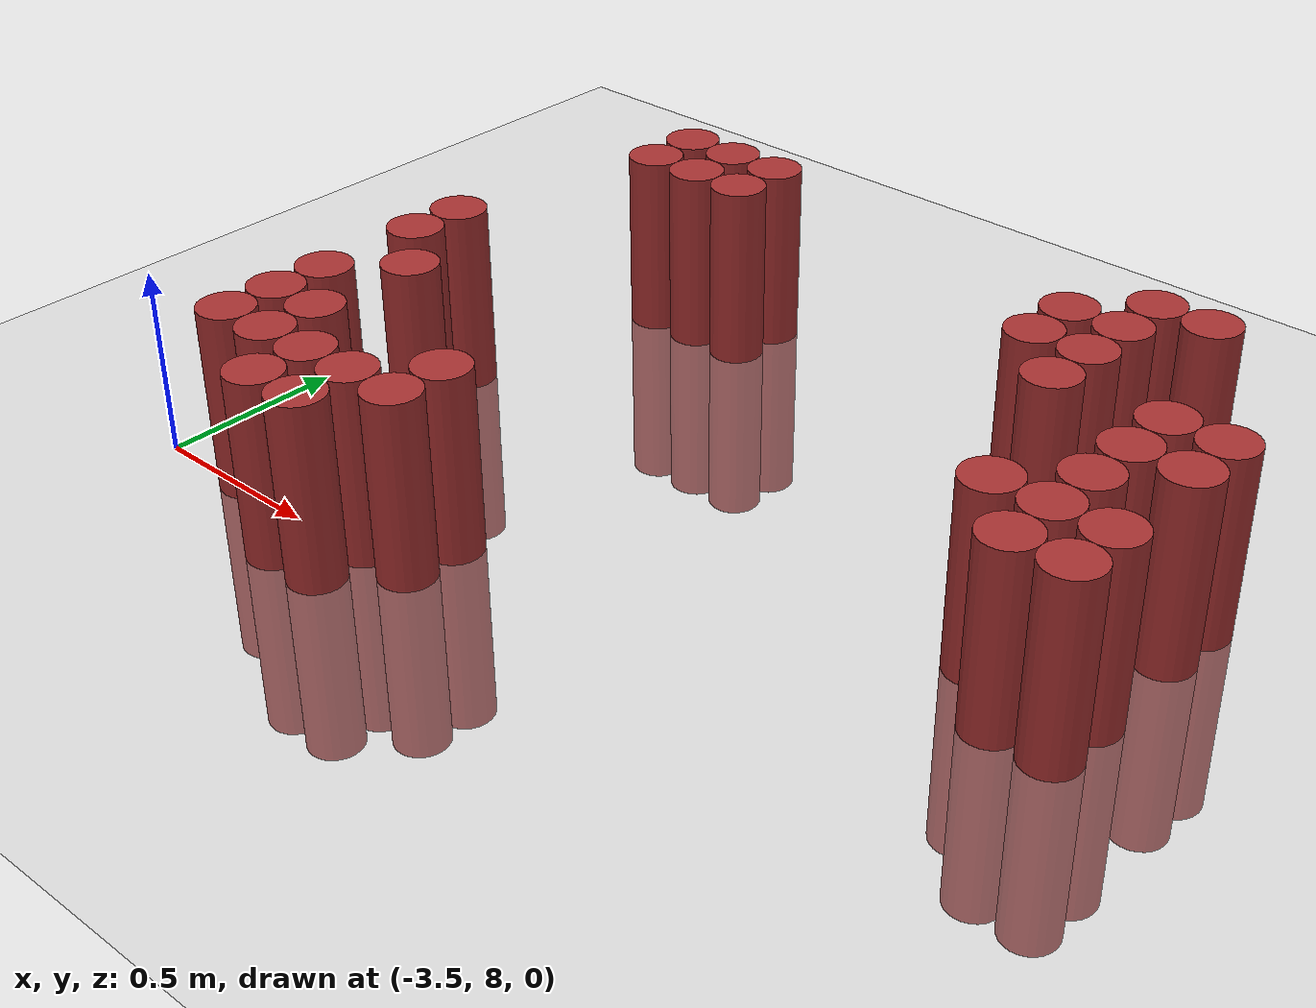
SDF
<sdf version="1.6">
 <world name="default">
  <model name="ground_plane">
   <static>1</static>
   <link name="link">
    <collision name="collision">
     <geometry><plane><normal>0 0 1</normal><size>100 100</size></plane></geometry>
     <surface><friction><ode><mu>100</mu><mu2>50</mu2></ode></friction></surface>
    </collision>
    <visual name="visual">
     <cast_shadows>0</cast_shadows>
     <geometry><plane><normal>0 0 1</normal><size>100 100</size></plane></geometry>
     <material>
      <script><uri>file://media/materials/scripts/gazebo.material</uri><name>Gazebo/Grey</name></script>
     </material>
    </visual>
   </link>
  </model>
  <model name="unit_cylinder_193">
   <static>1</static>
   <pose>-3.225000 8.025000 0.000000 0.000000 0.000000 0.000000</pose>
   <link name="link">
    <inertial>
     <mass>1</mass>
     <inertia><ixx>0.145833</ixx><ixy>0</ixy><ixz>0</ixz><iyy>0.145833</iyy><iyz>0</iyz><izz>0.125</izz></inertia>
    </inertial>
    <collision name="collision">
     <geometry><cylinder><radius>0.075000</radius><length>1</length></cylinder></geometry>
    </collision>
    <visual name="visual">
     <geometry><cylinder><radius>0.075000</radius><length>1</length></cylinder></geometry>
     <material>
      <ambient>0.648000 0.192000 0.192000 1</ambient>
      <diffuse>0.648000 0.192000 0.192000 1</diffuse>
     </material>
     <material>
      <script><name>Gazebo/Grey</name><uri>file://media/materials/scripts/gazebo.material</uri></script>
     </material>
    </visual>
    <sensor name="sensor_contact" type="contact"><contact><collision>collision</collision></contact></sensor>
   </link>
   <plugin filename="gz-sim-touchplugin-system" name="gz::sim::systems::TouchPlugin">
    <target>robot</target>
    <namespace>robot</namespace>
    <time>0.001</time>
    <enabled>true</enabled>
   </plugin>
  </model>
  <model name="unit_cylinder_194">
   <static>1</static>
   <pose>-3.225000 8.175000 0.000000 0.000000 0.000000 0.000000</pose>
   <link name="link">
    <inertial>
     <mass>1</mass>
     <inertia><ixx>0.145833</ixx><ixy>0</ixy><ixz>0</ixz><iyy>0.145833</iyy><iyz>0</iyz><izz>0.125</izz></inertia>
    </inertial>
    <collision name="collision">
     <geometry><cylinder><radius>0.075000</radius><length>1</length></cylinder></geometry>
    </collision>
    <visual name="visual">
     <geometry><cylinder><radius>0.075000</radius><length>1</length></cylinder></geometry>
     <material>
      <ambient>0.648000 0.192000 0.192000 1</ambient>
      <diffuse>0.648000 0.192000 0.192000 1</diffuse>
     </material>
     <material>
      <script><name>Gazebo/Grey</name><uri>file://media/materials/scripts/gazebo.material</uri></script>
     </material>
    </visual>
    <sensor name="sensor_contact" type="contact"><contact><collision>collision</collision></contact></sensor>
   </link>
   <plugin filename="gz-sim-touchplugin-system" name="gz::sim::systems::TouchPlugin">
    <target>robot</target>
    <namespace>robot</namespace>
    <time>0.001</time>
    <enabled>true</enabled>
   </plugin>
  </model>
  <model name="unit_cylinder_195">
   <static>1</static>
   <pose>-3.225000 8.325000 0.000000 0.000000 0.000000 0.000000</pose>
   <link name="link">
    <inertial>
     <mass>1</mass>
     <inertia><ixx>0.145833</ixx><ixy>0</ixy><ixz>0</ixz><iyy>0.145833</iyy><iyz>0</iyz><izz>0.125</izz></inertia>
    </inertial>
    <collision name="collision">
     <geometry><cylinder><radius>0.075000</radius><length>1</length></cylinder></geometry>
    </collision>
    <visual name="visual">
     <geometry><cylinder><radius>0.075000</radius><length>1</length></cylinder></geometry>
     <material>
      <ambient>0.648000 0.192000 0.192000 1</ambient>
      <diffuse>0.648000 0.192000 0.192000 1</diffuse>
     </material>
     <material>
      <script><name>Gazebo/Grey</name><uri>file://media/materials/scripts/gazebo.material</uri></script>
     </material>
    </visual>
    <sensor name="sensor_contact" type="contact"><contact><collision>collision</collision></contact></sensor>
   </link>
   <plugin filename="gz-sim-touchplugin-system" name="gz::sim::systems::TouchPlugin">
    <target>robot</target>
    <namespace>robot</namespace>
    <time>0.001</time>
    <enabled>true</enabled>
   </plugin>
  </model>
  <model name="unit_cylinder_196">
   <static>1</static>
   <pose>-3.225000 8.625000 0.000000 0.000000 0.000000 0.000000</pose>
   <link name="link">
    <inertial>
     <mass>1</mass>
     <inertia><ixx>0.145833</ixx><ixy>0</ixy><ixz>0</ixz><iyy>0.145833</iyy><iyz>0</iyz><izz>0.125</izz></inertia>
    </inertial>
    <collision name="collision">
     <geometry><cylinder><radius>0.075000</radius><length>1</length></cylinder></geometry>
    </collision>
    <visual name="visual">
     <geometry><cylinder><radius>0.075000</radius><length>1</length></cylinder></geometry>
     <material>
      <ambient>0.648000 0.192000 0.192000 1</ambient>
      <diffuse>0.648000 0.192000 0.192000 1</diffuse>
     </material>
     <material>
      <script><name>Gazebo/Grey</name><uri>file://media/materials/scripts/gazebo.material</uri></script>
     </material>
    </visual>
    <sensor name="sensor_contact" type="contact"><contact><collision>collision</collision></contact></sensor>
   </link>
   <plugin filename="gz-sim-touchplugin-system" name="gz::sim::systems::TouchPlugin">
    <target>robot</target>
    <namespace>robot</namespace>
    <time>0.001</time>
    <enabled>true</enabled>
   </plugin>
  </model>
  <model name="unit_cylinder_197">
   <static>1</static>
   <pose>-3.225000 8.775000 0.000000 0.000000 0.000000 0.000000</pose>
   <link name="link">
    <inertial>
     <mass>1</mass>
     <inertia><ixx>0.145833</ixx><ixy>0</ixy><ixz>0</ixz><iyy>0.145833</iyy><iyz>0</iyz><izz>0.125</izz></inertia>
    </inertial>
    <collision name="collision">
     <geometry><cylinder><radius>0.075000</radius><length>1</length></cylinder></geometry>
    </collision>
    <visual name="visual">
     <geometry><cylinder><radius>0.075000</radius><length>1</length></cylinder></geometry>
     <material>
      <ambient>0.648000 0.192000 0.192000 1</ambient>
      <diffuse>0.648000 0.192000 0.192000 1</diffuse>
     </material>
     <material>
      <script><name>Gazebo/Grey</name><uri>file://media/materials/scripts/gazebo.material</uri></script>
     </material>
    </visual>
    <sensor name="sensor_contact" type="contact"><contact><collision>collision</collision></contact></sensor>
   </link>
   <plugin filename="gz-sim-touchplugin-system" name="gz::sim::systems::TouchPlugin">
    <target>robot</target>
    <namespace>robot</namespace>
    <time>0.001</time>
    <enabled>true</enabled>
   </plugin>
  </model>
  <model name="unit_cylinder_204">
   <static>1</static>
   <pose>-3.075000 8.025000 0.000000 0.000000 0.000000 0.000000</pose>
   <link name="link">
    <inertial>
     <mass>1</mass>
     <inertia><ixx>0.145833</ixx><ixy>0</ixy><ixz>0</ixz><iyy>0.145833</iyy><iyz>0</iyz><izz>0.125</izz></inertia>
    </inertial>
    <collision name="collision">
     <geometry><cylinder><radius>0.075000</radius><length>1</length></cylinder></geometry>
    </collision>
    <visual name="visual">
     <geometry><cylinder><radius>0.075000</radius><length>1</length></cylinder></geometry>
     <material>
      <ambient>0.648000 0.192000 0.192000 1</ambient>
      <diffuse>0.648000 0.192000 0.192000 1</diffuse>
     </material>
     <material>
      <script><name>Gazebo/Grey</name><uri>file://media/materials/scripts/gazebo.material</uri></script>
     </material>
    </visual>
    <sensor name="sensor_contact" type="contact"><contact><collision>collision</collision></contact></sensor>
   </link>
   <plugin filename="gz-sim-touchplugin-system" name="gz::sim::systems::TouchPlugin">
    <target>robot</target>
    <namespace>robot</namespace>
    <time>0.001</time>
    <enabled>true</enabled>
   </plugin>
  </model>
  <model name="unit_cylinder_205">
   <static>1</static>
   <pose>-3.075000 8.175000 0.000000 0.000000 0.000000 0.000000</pose>
   <link name="link">
    <inertial>
     <mass>1</mass>
     <inertia><ixx>0.145833</ixx><ixy>0</ixy><ixz>0</ixz><iyy>0.145833</iyy><iyz>0</iyz><izz>0.125</izz></inertia>
    </inertial>
    <collision name="collision">
     <geometry><cylinder><radius>0.075000</radius><length>1</length></cylinder></geometry>
    </collision>
    <visual name="visual">
     <geometry><cylinder><radius>0.075000</radius><length>1</length></cylinder></geometry>
     <material>
      <ambient>0.648000 0.192000 0.192000 1</ambient>
      <diffuse>0.648000 0.192000 0.192000 1</diffuse>
     </material>
     <material>
      <script><name>Gazebo/Grey</name><uri>file://media/materials/scripts/gazebo.material</uri></script>
     </material>
    </visual>
    <sensor name="sensor_contact" type="contact"><contact><collision>collision</collision></contact></sensor>
   </link>
   <plugin filename="gz-sim-touchplugin-system" name="gz::sim::systems::TouchPlugin">
    <target>robot</target>
    <namespace>robot</namespace>
    <time>0.001</time>
    <enabled>true</enabled>
   </plugin>
  </model>
  <model name="unit_cylinder_206">
   <static>1</static>
   <pose>-3.075000 8.475000 0.000000 0.000000 0.000000 0.000000</pose>
   <link name="link">
    <inertial>
     <mass>1</mass>
     <inertia><ixx>0.145833</ixx><ixy>0</ixy><ixz>0</ixz><iyy>0.145833</iyy><iyz>0</iyz><izz>0.125</izz></inertia>
    </inertial>
    <collision name="collision">
     <geometry><cylinder><radius>0.075000</radius><length>1</length></cylinder></geometry>
    </collision>
    <visual name="visual">
     <geometry><cylinder><radius>0.075000</radius><length>1</length></cylinder></geometry>
     <material>
      <ambient>0.648000 0.192000 0.192000 1</ambient>
      <diffuse>0.648000 0.192000 0.192000 1</diffuse>
     </material>
     <material>
      <script><name>Gazebo/Grey</name><uri>file://media/materials/scripts/gazebo.material</uri></script>
     </material>
    </visual>
    <sensor name="sensor_contact" type="contact"><contact><collision>collision</collision></contact></sensor>
   </link>
   <plugin filename="gz-sim-touchplugin-system" name="gz::sim::systems::TouchPlugin">
    <target>robot</target>
    <namespace>robot</namespace>
    <time>0.001</time>
    <enabled>true</enabled>
   </plugin>
  </model>
  <model name="unit_cylinder_207">
   <static>1</static>
   <pose>-3.075000 9.375000 0.000000 0.000000 0.000000 0.000000</pose>
   <link name="link">
    <inertial>
     <mass>1</mass>
     <inertia><ixx>0.145833</ixx><ixy>0</ixy><ixz>0</ixz><iyy>0.145833</iyy><iyz>0</iyz><izz>0.125</izz></inertia>
    </inertial>
    <collision name="collision">
     <geometry><cylinder><radius>0.075000</radius><length>1</length></cylinder></geometry>
    </collision>
    <visual name="visual">
     <geometry><cylinder><radius>0.075000</radius><length>1</length></cylinder></geometry>
     <material>
      <ambient>0.648000 0.192000 0.192000 1</ambient>
      <diffuse>0.648000 0.192000 0.192000 1</diffuse>
     </material>
     <material>
      <script><name>Gazebo/Grey</name><uri>file://media/materials/scripts/gazebo.material</uri></script>
     </material>
    </visual>
    <sensor name="sensor_contact" type="contact"><contact><collision>collision</collision></contact></sensor>
   </link>
   <plugin filename="gz-sim-touchplugin-system" name="gz::sim::systems::TouchPlugin">
    <target>robot</target>
    <namespace>robot</namespace>
    <time>0.001</time>
    <enabled>true</enabled>
   </plugin>
  </model>
  <model name="unit_cylinder_208">
   <static>1</static>
   <pose>-3.075000 9.525000 0.000000 0.000000 0.000000 0.000000</pose>
   <link name="link">
    <inertial>
     <mass>1</mass>
     <inertia><ixx>0.145833</ixx><ixy>0</ixy><ixz>0</ixz><iyy>0.145833</iyy><iyz>0</iyz><izz>0.125</izz></inertia>
    </inertial>
    <collision name="collision">
     <geometry><cylinder><radius>0.075000</radius><length>1</length></cylinder></geometry>
    </collision>
    <visual name="visual">
     <geometry><cylinder><radius>0.075000</radius><length>1</length></cylinder></geometry>
     <material>
      <ambient>0.648000 0.192000 0.192000 1</ambient>
      <diffuse>0.648000 0.192000 0.192000 1</diffuse>
     </material>
     <material>
      <script><name>Gazebo/Grey</name><uri>file://media/materials/scripts/gazebo.material</uri></script>
     </material>
    </visual>
    <sensor name="sensor_contact" type="contact"><contact><collision>collision</collision></contact></sensor>
   </link>
   <plugin filename="gz-sim-touchplugin-system" name="gz::sim::systems::TouchPlugin">
    <target>robot</target>
    <namespace>robot</namespace>
    <time>0.001</time>
    <enabled>true</enabled>
   </plugin>
  </model>
  <model name="unit_cylinder_213">
   <static>1</static>
   <pose>-2.925000 7.875000 0.000000 0.000000 0.000000 0.000000</pose>
   <link name="link">
    <inertial>
     <mass>1</mass>
     <inertia><ixx>0.145833</ixx><ixy>0</ixy><ixz>0</ixz><iyy>0.145833</iyy><iyz>0</iyz><izz>0.125</izz></inertia>
    </inertial>
    <collision name="collision">
     <geometry><cylinder><radius>0.075000</radius><length>1</length></cylinder></geometry>
    </collision>
    <visual name="visual">
     <geometry><cylinder><radius>0.075000</radius><length>1</length></cylinder></geometry>
     <material>
      <ambient>0.648000 0.192000 0.192000 1</ambient>
      <diffuse>0.648000 0.192000 0.192000 1</diffuse>
     </material>
     <material>
      <script><name>Gazebo/Grey</name><uri>file://media/materials/scripts/gazebo.material</uri></script>
     </material>
    </visual>
    <sensor name="sensor_contact" type="contact"><contact><collision>collision</collision></contact></sensor>
   </link>
   <plugin filename="gz-sim-touchplugin-system" name="gz::sim::systems::TouchPlugin">
    <target>robot</target>
    <namespace>robot</namespace>
    <time>0.001</time>
    <enabled>true</enabled>
   </plugin>
  </model>
  <model name="unit_cylinder_214">
   <static>1</static>
   <pose>-2.925000 8.025000 0.000000 0.000000 0.000000 0.000000</pose>
   <link name="link">
    <inertial>
     <mass>1</mass>
     <inertia><ixx>0.145833</ixx><ixy>0</ixy><ixz>0</ixz><iyy>0.145833</iyy><iyz>0</iyz><izz>0.125</izz></inertia>
    </inertial>
    <collision name="collision">
     <geometry><cylinder><radius>0.075000</radius><length>1</length></cylinder></geometry>
    </collision>
    <visual name="visual">
     <geometry><cylinder><radius>0.075000</radius><length>1</length></cylinder></geometry>
     <material>
      <ambient>0.648000 0.192000 0.192000 1</ambient>
      <diffuse>0.648000 0.192000 0.192000 1</diffuse>
     </material>
     <material>
      <script><name>Gazebo/Grey</name><uri>file://media/materials/scripts/gazebo.material</uri></script>
     </material>
    </visual>
    <sensor name="sensor_contact" type="contact"><contact><collision>collision</collision></contact></sensor>
   </link>
   <plugin filename="gz-sim-touchplugin-system" name="gz::sim::systems::TouchPlugin">
    <target>robot</target>
    <namespace>robot</namespace>
    <time>0.001</time>
    <enabled>true</enabled>
   </plugin>
  </model>
  <model name="unit_cylinder_215">
   <static>1</static>
   <pose>-2.925000 9.375000 0.000000 0.000000 0.000000 0.000000</pose>
   <link name="link">
    <inertial>
     <mass>1</mass>
     <inertia><ixx>0.145833</ixx><ixy>0</ixy><ixz>0</ixz><iyy>0.145833</iyy><iyz>0</iyz><izz>0.125</izz></inertia>
    </inertial>
    <collision name="collision">
     <geometry><cylinder><radius>0.075000</radius><length>1</length></cylinder></geometry>
    </collision>
    <visual name="visual">
     <geometry><cylinder><radius>0.075000</radius><length>1</length></cylinder></geometry>
     <material>
      <ambient>0.648000 0.192000 0.192000 1</ambient>
      <diffuse>0.648000 0.192000 0.192000 1</diffuse>
     </material>
     <material>
      <script><name>Gazebo/Grey</name><uri>file://media/materials/scripts/gazebo.material</uri></script>
     </material>
    </visual>
    <sensor name="sensor_contact" type="contact"><contact><collision>collision</collision></contact></sensor>
   </link>
   <plugin filename="gz-sim-touchplugin-system" name="gz::sim::systems::TouchPlugin">
    <target>robot</target>
    <namespace>robot</namespace>
    <time>0.001</time>
    <enabled>true</enabled>
   </plugin>
  </model>
  <model name="unit_cylinder_216">
   <static>1</static>
   <pose>-2.925000 9.525000 0.000000 0.000000 0.000000 0.000000</pose>
   <link name="link">
    <inertial>
     <mass>1</mass>
     <inertia><ixx>0.145833</ixx><ixy>0</ixy><ixz>0</ixz><iyy>0.145833</iyy><iyz>0</iyz><izz>0.125</izz></inertia>
    </inertial>
    <collision name="collision">
     <geometry><cylinder><radius>0.075000</radius><length>1</length></cylinder></geometry>
    </collision>
    <visual name="visual">
     <geometry><cylinder><radius>0.075000</radius><length>1</length></cylinder></geometry>
     <material>
      <ambient>0.648000 0.192000 0.192000 1</ambient>
      <diffuse>0.648000 0.192000 0.192000 1</diffuse>
     </material>
     <material>
      <script><name>Gazebo/Grey</name><uri>file://media/materials/scripts/gazebo.material</uri></script>
     </material>
    </visual>
    <sensor name="sensor_contact" type="contact"><contact><collision>collision</collision></contact></sensor>
   </link>
   <plugin filename="gz-sim-touchplugin-system" name="gz::sim::systems::TouchPlugin">
    <target>robot</target>
    <namespace>robot</namespace>
    <time>0.001</time>
    <enabled>true</enabled>
   </plugin>
  </model>
  <model name="unit_cylinder_217">
   <static>1</static>
   <pose>-2.775000 7.875000 0.000000 0.000000 0.000000 0.000000</pose>
   <link name="link">
    <inertial>
     <mass>1</mass>
     <inertia><ixx>0.145833</ixx><ixy>0</ixy><ixz>0</ixz><iyy>0.145833</iyy><iyz>0</iyz><izz>0.125</izz></inertia>
    </inertial>
    <collision name="collision">
     <geometry><cylinder><radius>0.075000</radius><length>1</length></cylinder></geometry>
    </collision>
    <visual name="visual">
     <geometry><cylinder><radius>0.075000</radius><length>1</length></cylinder></geometry>
     <material>
      <ambient>0.648000 0.192000 0.192000 1</ambient>
      <diffuse>0.648000 0.192000 0.192000 1</diffuse>
     </material>
     <material>
      <script><name>Gazebo/Grey</name><uri>file://media/materials/scripts/gazebo.material</uri></script>
     </material>
    </visual>
    <sensor name="sensor_contact" type="contact"><contact><collision>collision</collision></contact></sensor>
   </link>
   <plugin filename="gz-sim-touchplugin-system" name="gz::sim::systems::TouchPlugin">
    <target>robot</target>
    <namespace>robot</namespace>
    <time>0.001</time>
    <enabled>true</enabled>
   </plugin>
  </model>
  <model name="unit_cylinder_218">
   <static>1</static>
   <pose>-2.775000 8.025000 0.000000 0.000000 0.000000 0.000000</pose>
   <link name="link">
    <inertial>
     <mass>1</mass>
     <inertia><ixx>0.145833</ixx><ixy>0</ixy><ixz>0</ixz><iyy>0.145833</iyy><iyz>0</iyz><izz>0.125</izz></inertia>
    </inertial>
    <collision name="collision">
     <geometry><cylinder><radius>0.075000</radius><length>1</length></cylinder></geometry>
    </collision>
    <visual name="visual">
     <geometry><cylinder><radius>0.075000</radius><length>1</length></cylinder></geometry>
     <material>
      <ambient>0.648000 0.192000 0.192000 1</ambient>
      <diffuse>0.648000 0.192000 0.192000 1</diffuse>
     </material>
     <material>
      <script><name>Gazebo/Grey</name><uri>file://media/materials/scripts/gazebo.material</uri></script>
     </material>
    </visual>
    <sensor name="sensor_contact" type="contact"><contact><collision>collision</collision></contact></sensor>
   </link>
   <plugin filename="gz-sim-touchplugin-system" name="gz::sim::systems::TouchPlugin">
    <target>robot</target>
    <namespace>robot</namespace>
    <time>0.001</time>
    <enabled>true</enabled>
   </plugin>
  </model>
  <model name="unit_cylinder_219">
   <static>1</static>
   <pose>-2.775000 9.375000 0.000000 0.000000 0.000000 0.000000</pose>
   <link name="link">
    <inertial>
     <mass>1</mass>
     <inertia><ixx>0.145833</ixx><ixy>0</ixy><ixz>0</ixz><iyy>0.145833</iyy><iyz>0</iyz><izz>0.125</izz></inertia>
    </inertial>
    <collision name="collision">
     <geometry><cylinder><radius>0.075000</radius><length>1</length></cylinder></geometry>
    </collision>
    <visual name="visual">
     <geometry><cylinder><radius>0.075000</radius><length>1</length></cylinder></geometry>
     <material>
      <ambient>0.648000 0.192000 0.192000 1</ambient>
      <diffuse>0.648000 0.192000 0.192000 1</diffuse>
     </material>
     <material>
      <script><name>Gazebo/Grey</name><uri>file://media/materials/scripts/gazebo.material</uri></script>
     </material>
    </visual>
    <sensor name="sensor_contact" type="contact"><contact><collision>collision</collision></contact></sensor>
   </link>
   <plugin filename="gz-sim-touchplugin-system" name="gz::sim::systems::TouchPlugin">
    <target>robot</target>
    <namespace>robot</namespace>
    <time>0.001</time>
    <enabled>true</enabled>
   </plugin>
  </model>
  <model name="unit_cylinder_220">
   <static>1</static>
   <pose>-2.775000 9.525000 0.000000 0.000000 0.000000 0.000000</pose>
   <link name="link">
    <inertial>
     <mass>1</mass>
     <inertia><ixx>0.145833</ixx><ixy>0</ixy><ixz>0</ixz><iyy>0.145833</iyy><iyz>0</iyz><izz>0.125</izz></inertia>
    </inertial>
    <collision name="collision">
     <geometry><cylinder><radius>0.075000</radius><length>1</length></cylinder></geometry>
    </collision>
    <visual name="visual">
     <geometry><cylinder><radius>0.075000</radius><length>1</length></cylinder></geometry>
     <material>
      <ambient>0.648000 0.192000 0.192000 1</ambient>
      <diffuse>0.648000 0.192000 0.192000 1</diffuse>
     </material>
     <material>
      <script><name>Gazebo/Grey</name><uri>file://media/materials/scripts/gazebo.material</uri></script>
     </material>
    </visual>
    <sensor name="sensor_contact" type="contact"><contact><collision>collision</collision></contact></sensor>
   </link>
   <plugin filename="gz-sim-touchplugin-system" name="gz::sim::systems::TouchPlugin">
    <target>robot</target>
    <namespace>robot</namespace>
    <time>0.001</time>
    <enabled>true</enabled>
   </plugin>
  </model>
  <model name="unit_cylinder_221">
   <static>1</static>
   <pose>-2.625000 8.025000 0.000000 0.000000 0.000000 0.000000</pose>
   <link name="link">
    <inertial>
     <mass>1</mass>
     <inertia><ixx>0.145833</ixx><ixy>0</ixy><ixz>0</ixz><iyy>0.145833</iyy><iyz>0</iyz><izz>0.125</izz></inertia>
    </inertial>
    <collision name="collision">
     <geometry><cylinder><radius>0.075000</radius><length>1</length></cylinder></geometry>
    </collision>
    <visual name="visual">
     <geometry><cylinder><radius>0.075000</radius><length>1</length></cylinder></geometry>
     <material>
      <ambient>0.648000 0.192000 0.192000 1</ambient>
      <diffuse>0.648000 0.192000 0.192000 1</diffuse>
     </material>
     <material>
      <script><name>Gazebo/Grey</name><uri>file://media/materials/scripts/gazebo.material</uri></script>
     </material>
    </visual>
    <sensor name="sensor_contact" type="contact"><contact><collision>collision</collision></contact></sensor>
   </link>
   <plugin filename="gz-sim-touchplugin-system" name="gz::sim::systems::TouchPlugin">
    <target>robot</target>
    <namespace>robot</namespace>
    <time>0.001</time>
    <enabled>true</enabled>
   </plugin>
  </model>
  <model name="unit_cylinder_222">
   <static>1</static>
   <pose>-2.625000 8.175000 0.000000 0.000000 0.000000 0.000000</pose>
   <link name="link">
    <inertial>
     <mass>1</mass>
     <inertia><ixx>0.145833</ixx><ixy>0</ixy><ixz>0</ixz><iyy>0.145833</iyy><iyz>0</iyz><izz>0.125</izz></inertia>
    </inertial>
    <collision name="collision">
     <geometry><cylinder><radius>0.075000</radius><length>1</length></cylinder></geometry>
    </collision>
    <visual name="visual">
     <geometry><cylinder><radius>0.075000</radius><length>1</length></cylinder></geometry>
     <material>
      <ambient>0.648000 0.192000 0.192000 1</ambient>
      <diffuse>0.648000 0.192000 0.192000 1</diffuse>
     </material>
     <material>
      <script><name>Gazebo/Grey</name><uri>file://media/materials/scripts/gazebo.material</uri></script>
     </material>
    </visual>
    <sensor name="sensor_contact" type="contact"><contact><collision>collision</collision></contact></sensor>
   </link>
   <plugin filename="gz-sim-touchplugin-system" name="gz::sim::systems::TouchPlugin">
    <target>robot</target>
    <namespace>robot</namespace>
    <time>0.001</time>
    <enabled>true</enabled>
   </plugin>
  </model>
  <model name="unit_cylinder_223">
   <static>1</static>
   <pose>-1.725000 9.225000 0.000000 0.000000 0.000000 0.000000</pose>
   <link name="link">
    <inertial>
     <mass>1</mass>
     <inertia><ixx>0.145833</ixx><ixy>0</ixy><ixz>0</ixz><iyy>0.145833</iyy><iyz>0</iyz><izz>0.125</izz></inertia>
    </inertial>
    <collision name="collision">
     <geometry><cylinder><radius>0.075000</radius><length>1</length></cylinder></geometry>
    </collision>
    <visual name="visual">
     <geometry><cylinder><radius>0.075000</radius><length>1</length></cylinder></geometry>
     <material>
      <ambient>0.648000 0.192000 0.192000 1</ambient>
      <diffuse>0.648000 0.192000 0.192000 1</diffuse>
     </material>
     <material>
      <script><name>Gazebo/Grey</name><uri>file://media/materials/scripts/gazebo.material</uri></script>
     </material>
    </visual>
    <sensor name="sensor_contact" type="contact"><contact><collision>collision</collision></contact></sensor>
   </link>
   <plugin filename="gz-sim-touchplugin-system" name="gz::sim::systems::TouchPlugin">
    <target>robot</target>
    <namespace>robot</namespace>
    <time>0.001</time>
    <enabled>true</enabled>
   </plugin>
  </model>
  <model name="unit_cylinder_224">
   <static>1</static>
   <pose>-1.725000 9.375000 0.000000 0.000000 0.000000 0.000000</pose>
   <link name="link">
    <inertial>
     <mass>1</mass>
     <inertia><ixx>0.145833</ixx><ixy>0</ixy><ixz>0</ixz><iyy>0.145833</iyy><iyz>0</iyz><izz>0.125</izz></inertia>
    </inertial>
    <collision name="collision">
     <geometry><cylinder><radius>0.075000</radius><length>1</length></cylinder></geometry>
    </collision>
    <visual name="visual">
     <geometry><cylinder><radius>0.075000</radius><length>1</length></cylinder></geometry>
     <material>
      <ambient>0.648000 0.192000 0.192000 1</ambient>
      <diffuse>0.648000 0.192000 0.192000 1</diffuse>
     </material>
     <material>
      <script><name>Gazebo/Grey</name><uri>file://media/materials/scripts/gazebo.material</uri></script>
     </material>
    </visual>
    <sensor name="sensor_contact" type="contact"><contact><collision>collision</collision></contact></sensor>
   </link>
   <plugin filename="gz-sim-touchplugin-system" name="gz::sim::systems::TouchPlugin">
    <target>robot</target>
    <namespace>robot</namespace>
    <time>0.001</time>
    <enabled>true</enabled>
   </plugin>
  </model>
  <model name="unit_cylinder_225">
   <static>1</static>
   <pose>-1.575000 9.075000 0.000000 0.000000 0.000000 0.000000</pose>
   <link name="link">
    <inertial>
     <mass>1</mass>
     <inertia><ixx>0.145833</ixx><ixy>0</ixy><ixz>0</ixz><iyy>0.145833</iyy><iyz>0</iyz><izz>0.125</izz></inertia>
    </inertial>
    <collision name="collision">
     <geometry><cylinder><radius>0.075000</radius><length>1</length></cylinder></geometry>
    </collision>
    <visual name="visual">
     <geometry><cylinder><radius>0.075000</radius><length>1</length></cylinder></geometry>
     <material>
      <ambient>0.648000 0.192000 0.192000 1</ambient>
      <diffuse>0.648000 0.192000 0.192000 1</diffuse>
     </material>
     <material>
      <script><name>Gazebo/Grey</name><uri>file://media/materials/scripts/gazebo.material</uri></script>
     </material>
    </visual>
    <sensor name="sensor_contact" type="contact"><contact><collision>collision</collision></contact></sensor>
   </link>
   <plugin filename="gz-sim-touchplugin-system" name="gz::sim::systems::TouchPlugin">
    <target>robot</target>
    <namespace>robot</namespace>
    <time>0.001</time>
    <enabled>true</enabled>
   </plugin>
  </model>
  <model name="unit_cylinder_226">
   <static>1</static>
   <pose>-1.575000 9.225000 0.000000 0.000000 0.000000 0.000000</pose>
   <link name="link">
    <inertial>
     <mass>1</mass>
     <inertia><ixx>0.145833</ixx><ixy>0</ixy><ixz>0</ixz><iyy>0.145833</iyy><iyz>0</iyz><izz>0.125</izz></inertia>
    </inertial>
    <collision name="collision">
     <geometry><cylinder><radius>0.075000</radius><length>1</length></cylinder></geometry>
    </collision>
    <visual name="visual">
     <geometry><cylinder><radius>0.075000</radius><length>1</length></cylinder></geometry>
     <material>
      <ambient>0.648000 0.192000 0.192000 1</ambient>
      <diffuse>0.648000 0.192000 0.192000 1</diffuse>
     </material>
     <material>
      <script><name>Gazebo/Grey</name><uri>file://media/materials/scripts/gazebo.material</uri></script>
     </material>
    </visual>
    <sensor name="sensor_contact" type="contact"><contact><collision>collision</collision></contact></sensor>
   </link>
   <plugin filename="gz-sim-touchplugin-system" name="gz::sim::systems::TouchPlugin">
    <target>robot</target>
    <namespace>robot</namespace>
    <time>0.001</time>
    <enabled>true</enabled>
   </plugin>
  </model>
  <model name="unit_cylinder_227">
   <static>1</static>
   <pose>-1.575000 9.375000 0.000000 0.000000 0.000000 0.000000</pose>
   <link name="link">
    <inertial>
     <mass>1</mass>
     <inertia><ixx>0.145833</ixx><ixy>0</ixy><ixz>0</ixz><iyy>0.145833</iyy><iyz>0</iyz><izz>0.125</izz></inertia>
    </inertial>
    <collision name="collision">
     <geometry><cylinder><radius>0.075000</radius><length>1</length></cylinder></geometry>
    </collision>
    <visual name="visual">
     <geometry><cylinder><radius>0.075000</radius><length>1</length></cylinder></geometry>
     <material>
      <ambient>0.648000 0.192000 0.192000 1</ambient>
      <diffuse>0.648000 0.192000 0.192000 1</diffuse>
     </material>
     <material>
      <script><name>Gazebo/Grey</name><uri>file://media/materials/scripts/gazebo.material</uri></script>
     </material>
    </visual>
    <sensor name="sensor_contact" type="contact"><contact><collision>collision</collision></contact></sensor>
   </link>
   <plugin filename="gz-sim-touchplugin-system" name="gz::sim::systems::TouchPlugin">
    <target>robot</target>
    <namespace>robot</namespace>
    <time>0.001</time>
    <enabled>true</enabled>
   </plugin>
  </model>
  <model name="unit_cylinder_228">
   <static>1</static>
   <pose>-1.575000 9.525000 0.000000 0.000000 0.000000 0.000000</pose>
   <link name="link">
    <inertial>
     <mass>1</mass>
     <inertia><ixx>0.145833</ixx><ixy>0</ixy><ixz>0</ixz><iyy>0.145833</iyy><iyz>0</iyz><izz>0.125</izz></inertia>
    </inertial>
    <collision name="collision">
     <geometry><cylinder><radius>0.075000</radius><length>1</length></cylinder></geometry>
    </collision>
    <visual name="visual">
     <geometry><cylinder><radius>0.075000</radius><length>1</length></cylinder></geometry>
     <material>
      <ambient>0.648000 0.192000 0.192000 1</ambient>
      <diffuse>0.648000 0.192000 0.192000 1</diffuse>
     </material>
     <material>
      <script><name>Gazebo/Grey</name><uri>file://media/materials/scripts/gazebo.material</uri></script>
     </material>
    </visual>
    <sensor name="sensor_contact" type="contact"><contact><collision>collision</collision></contact></sensor>
   </link>
   <plugin filename="gz-sim-touchplugin-system" name="gz::sim::systems::TouchPlugin">
    <target>robot</target>
    <namespace>robot</namespace>
    <time>0.001</time>
    <enabled>true</enabled>
   </plugin>
  </model>
  <model name="unit_cylinder_233">
   <static>1</static>
   <pose>-1.425000 8.625000 0.000000 0.000000 0.000000 0.000000</pose>
   <link name="link">
    <inertial>
     <mass>1</mass>
     <inertia><ixx>0.145833</ixx><ixy>0</ixy><ixz>0</ixz><iyy>0.145833</iyy><iyz>0</iyz><izz>0.125</izz></inertia>
    </inertial>
    <collision name="collision">
     <geometry><cylinder><radius>0.075000</radius><length>1</length></cylinder></geometry>
    </collision>
    <visual name="visual">
     <geometry><cylinder><radius>0.075000</radius><length>1</length></cylinder></geometry>
     <material>
      <ambient>0.648000 0.192000 0.192000 1</ambient>
      <diffuse>0.648000 0.192000 0.192000 1</diffuse>
     </material>
     <material>
      <script><name>Gazebo/Grey</name><uri>file://media/materials/scripts/gazebo.material</uri></script>
     </material>
    </visual>
    <sensor name="sensor_contact" type="contact"><contact><collision>collision</collision></contact></sensor>
   </link>
   <plugin filename="gz-sim-touchplugin-system" name="gz::sim::systems::TouchPlugin">
    <target>robot</target>
    <namespace>robot</namespace>
    <time>0.001</time>
    <enabled>true</enabled>
   </plugin>
  </model>
  <model name="unit_cylinder_234">
   <static>1</static>
   <pose>-1.425000 9.525000 0.000000 0.000000 0.000000 0.000000</pose>
   <link name="link">
    <inertial>
     <mass>1</mass>
     <inertia><ixx>0.145833</ixx><ixy>0</ixy><ixz>0</ixz><iyy>0.145833</iyy><iyz>0</iyz><izz>0.125</izz></inertia>
    </inertial>
    <collision name="collision">
     <geometry><cylinder><radius>0.075000</radius><length>1</length></cylinder></geometry>
    </collision>
    <visual name="visual">
     <geometry><cylinder><radius>0.075000</radius><length>1</length></cylinder></geometry>
     <material>
      <ambient>0.648000 0.192000 0.192000 1</ambient>
      <diffuse>0.648000 0.192000 0.192000 1</diffuse>
     </material>
     <material>
      <script><name>Gazebo/Grey</name><uri>file://media/materials/scripts/gazebo.material</uri></script>
     </material>
    </visual>
    <sensor name="sensor_contact" type="contact"><contact><collision>collision</collision></contact></sensor>
   </link>
   <plugin filename="gz-sim-touchplugin-system" name="gz::sim::systems::TouchPlugin">
    <target>robot</target>
    <namespace>robot</namespace>
    <time>0.001</time>
    <enabled>true</enabled>
   </plugin>
  </model>
  <model name="unit_cylinder_240">
   <static>1</static>
   <pose>-1.275000 8.475000 0.000000 0.000000 0.000000 0.000000</pose>
   <link name="link">
    <inertial>
     <mass>1</mass>
     <inertia><ixx>0.145833</ixx><ixy>0</ixy><ixz>0</ixz><iyy>0.145833</iyy><iyz>0</iyz><izz>0.125</izz></inertia>
    </inertial>
    <collision name="collision">
     <geometry><cylinder><radius>0.075000</radius><length>1</length></cylinder></geometry>
    </collision>
    <visual name="visual">
     <geometry><cylinder><radius>0.075000</radius><length>1</length></cylinder></geometry>
     <material>
      <ambient>0.648000 0.192000 0.192000 1</ambient>
      <diffuse>0.648000 0.192000 0.192000 1</diffuse>
     </material>
     <material>
      <script><name>Gazebo/Grey</name><uri>file://media/materials/scripts/gazebo.material</uri></script>
     </material>
    </visual>
    <sensor name="sensor_contact" type="contact"><contact><collision>collision</collision></contact></sensor>
   </link>
   <plugin filename="gz-sim-touchplugin-system" name="gz::sim::systems::TouchPlugin">
    <target>robot</target>
    <namespace>robot</namespace>
    <time>0.001</time>
    <enabled>true</enabled>
   </plugin>
  </model>
  <model name="unit_cylinder_241">
   <static>1</static>
   <pose>-1.275000 8.625000 0.000000 0.000000 0.000000 0.000000</pose>
   <link name="link">
    <inertial>
     <mass>1</mass>
     <inertia><ixx>0.145833</ixx><ixy>0</ixy><ixz>0</ixz><iyy>0.145833</iyy><iyz>0</iyz><izz>0.125</izz></inertia>
    </inertial>
    <collision name="collision">
     <geometry><cylinder><radius>0.075000</radius><length>1</length></cylinder></geometry>
    </collision>
    <visual name="visual">
     <geometry><cylinder><radius>0.075000</radius><length>1</length></cylinder></geometry>
     <material>
      <ambient>0.648000 0.192000 0.192000 1</ambient>
      <diffuse>0.648000 0.192000 0.192000 1</diffuse>
     </material>
     <material>
      <script><name>Gazebo/Grey</name><uri>file://media/materials/scripts/gazebo.material</uri></script>
     </material>
    </visual>
    <sensor name="sensor_contact" type="contact"><contact><collision>collision</collision></contact></sensor>
   </link>
   <plugin filename="gz-sim-touchplugin-system" name="gz::sim::systems::TouchPlugin">
    <target>robot</target>
    <namespace>robot</namespace>
    <time>0.001</time>
    <enabled>true</enabled>
   </plugin>
  </model>
  <model name="unit_cylinder_242">
   <static>1</static>
   <pose>-1.275000 8.775000 0.000000 0.000000 0.000000 0.000000</pose>
   <link name="link">
    <inertial>
     <mass>1</mass>
     <inertia><ixx>0.145833</ixx><ixy>0</ixy><ixz>0</ixz><iyy>0.145833</iyy><iyz>0</iyz><izz>0.125</izz></inertia>
    </inertial>
    <collision name="collision">
     <geometry><cylinder><radius>0.075000</radius><length>1</length></cylinder></geometry>
    </collision>
    <visual name="visual">
     <geometry><cylinder><radius>0.075000</radius><length>1</length></cylinder></geometry>
     <material>
      <ambient>0.648000 0.192000 0.192000 1</ambient>
      <diffuse>0.648000 0.192000 0.192000 1</diffuse>
     </material>
     <material>
      <script><name>Gazebo/Grey</name><uri>file://media/materials/scripts/gazebo.material</uri></script>
     </material>
    </visual>
    <sensor name="sensor_contact" type="contact"><contact><collision>collision</collision></contact></sensor>
   </link>
   <plugin filename="gz-sim-touchplugin-system" name="gz::sim::systems::TouchPlugin">
    <target>robot</target>
    <namespace>robot</namespace>
    <time>0.001</time>
    <enabled>true</enabled>
   </plugin>
  </model>
  <model name="unit_cylinder_243">
   <static>1</static>
   <pose>-1.275000 8.925000 0.000000 0.000000 0.000000 0.000000</pose>
   <link name="link">
    <inertial>
     <mass>1</mass>
     <inertia><ixx>0.145833</ixx><ixy>0</ixy><ixz>0</ixz><iyy>0.145833</iyy><iyz>0</iyz><izz>0.125</izz></inertia>
    </inertial>
    <collision name="collision">
     <geometry><cylinder><radius>0.075000</radius><length>1</length></cylinder></geometry>
    </collision>
    <visual name="visual">
     <geometry><cylinder><radius>0.075000</radius><length>1</length></cylinder></geometry>
     <material>
      <ambient>0.648000 0.192000 0.192000 1</ambient>
      <diffuse>0.648000 0.192000 0.192000 1</diffuse>
     </material>
     <material>
      <script><name>Gazebo/Grey</name><uri>file://media/materials/scripts/gazebo.material</uri></script>
     </material>
    </visual>
    <sensor name="sensor_contact" type="contact"><contact><collision>collision</collision></contact></sensor>
   </link>
   <plugin filename="gz-sim-touchplugin-system" name="gz::sim::systems::TouchPlugin">
    <target>robot</target>
    <namespace>robot</namespace>
    <time>0.001</time>
    <enabled>true</enabled>
   </plugin>
  </model>
  <model name="unit_cylinder_244">
   <static>1</static>
   <pose>-1.275000 9.075000 0.000000 0.000000 0.000000 0.000000</pose>
   <link name="link">
    <inertial>
     <mass>1</mass>
     <inertia><ixx>0.145833</ixx><ixy>0</ixy><ixz>0</ixz><iyy>0.145833</iyy><iyz>0</iyz><izz>0.125</izz></inertia>
    </inertial>
    <collision name="collision">
     <geometry><cylinder><radius>0.075000</radius><length>1</length></cylinder></geometry>
    </collision>
    <visual name="visual">
     <geometry><cylinder><radius>0.075000</radius><length>1</length></cylinder></geometry>
     <material>
      <ambient>0.648000 0.192000 0.192000 1</ambient>
      <diffuse>0.648000 0.192000 0.192000 1</diffuse>
     </material>
     <material>
      <script><name>Gazebo/Grey</name><uri>file://media/materials/scripts/gazebo.material</uri></script>
     </material>
    </visual>
    <sensor name="sensor_contact" type="contact"><contact><collision>collision</collision></contact></sensor>
   </link>
   <plugin filename="gz-sim-touchplugin-system" name="gz::sim::systems::TouchPlugin">
    <target>robot</target>
    <namespace>robot</namespace>
    <time>0.001</time>
    <enabled>true</enabled>
   </plugin>
  </model>
  <model name="unit_cylinder_249">
   <static>1</static>
   <pose>-1.125000 8.475000 0.000000 0.000000 0.000000 0.000000</pose>
   <link name="link">
    <inertial>
     <mass>1</mass>
     <inertia><ixx>0.145833</ixx><ixy>0</ixy><ixz>0</ixz><iyy>0.145833</iyy><iyz>0</iyz><izz>0.125</izz></inertia>
    </inertial>
    <collision name="collision">
     <geometry><cylinder><radius>0.075000</radius><length>1</length></cylinder></geometry>
    </collision>
    <visual name="visual">
     <geometry><cylinder><radius>0.075000</radius><length>1</length></cylinder></geometry>
     <material>
      <ambient>0.648000 0.192000 0.192000 1</ambient>
      <diffuse>0.648000 0.192000 0.192000 1</diffuse>
     </material>
     <material>
      <script><name>Gazebo/Grey</name><uri>file://media/materials/scripts/gazebo.material</uri></script>
     </material>
    </visual>
    <sensor name="sensor_contact" type="contact"><contact><collision>collision</collision></contact></sensor>
   </link>
   <plugin filename="gz-sim-touchplugin-system" name="gz::sim::systems::TouchPlugin">
    <target>robot</target>
    <namespace>robot</namespace>
    <time>0.001</time>
    <enabled>true</enabled>
   </plugin>
  </model>
  <model name="unit_cylinder_250">
   <static>1</static>
   <pose>-1.125000 8.625000 0.000000 0.000000 0.000000 0.000000</pose>
   <link name="link">
    <inertial>
     <mass>1</mass>
     <inertia><ixx>0.145833</ixx><ixy>0</ixy><ixz>0</ixz><iyy>0.145833</iyy><iyz>0</iyz><izz>0.125</izz></inertia>
    </inertial>
    <collision name="collision">
     <geometry><cylinder><radius>0.075000</radius><length>1</length></cylinder></geometry>
    </collision>
    <visual name="visual">
     <geometry><cylinder><radius>0.075000</radius><length>1</length></cylinder></geometry>
     <material>
      <ambient>0.648000 0.192000 0.192000 1</ambient>
      <diffuse>0.648000 0.192000 0.192000 1</diffuse>
     </material>
     <material>
      <script><name>Gazebo/Grey</name><uri>file://media/materials/scripts/gazebo.material</uri></script>
     </material>
    </visual>
    <sensor name="sensor_contact" type="contact"><contact><collision>collision</collision></contact></sensor>
   </link>
   <plugin filename="gz-sim-touchplugin-system" name="gz::sim::systems::TouchPlugin">
    <target>robot</target>
    <namespace>robot</namespace>
    <time>0.001</time>
    <enabled>true</enabled>
   </plugin>
  </model>
  <model name="unit_cylinder_251">
   <static>1</static>
   <pose>-1.125000 8.925000 0.000000 0.000000 0.000000 0.000000</pose>
   <link name="link">
    <inertial>
     <mass>1</mass>
     <inertia><ixx>0.145833</ixx><ixy>0</ixy><ixz>0</ixz><iyy>0.145833</iyy><iyz>0</iyz><izz>0.125</izz></inertia>
    </inertial>
    <collision name="collision">
     <geometry><cylinder><radius>0.075000</radius><length>1</length></cylinder></geometry>
    </collision>
    <visual name="visual">
     <geometry><cylinder><radius>0.075000</radius><length>1</length></cylinder></geometry>
     <material>
      <ambient>0.648000 0.192000 0.192000 1</ambient>
      <diffuse>0.648000 0.192000 0.192000 1</diffuse>
     </material>
     <material>
      <script><name>Gazebo/Grey</name><uri>file://media/materials/scripts/gazebo.material</uri></script>
     </material>
    </visual>
    <sensor name="sensor_contact" type="contact"><contact><collision>collision</collision></contact></sensor>
   </link>
   <plugin filename="gz-sim-touchplugin-system" name="gz::sim::systems::TouchPlugin">
    <target>robot</target>
    <namespace>robot</namespace>
    <time>0.001</time>
    <enabled>true</enabled>
   </plugin>
  </model>
  <model name="unit_cylinder_252">
   <static>1</static>
   <pose>-1.125000 9.075000 0.000000 0.000000 0.000000 0.000000</pose>
   <link name="link">
    <inertial>
     <mass>1</mass>
     <inertia><ixx>0.145833</ixx><ixy>0</ixy><ixz>0</ixz><iyy>0.145833</iyy><iyz>0</iyz><izz>0.125</izz></inertia>
    </inertial>
    <collision name="collision">
     <geometry><cylinder><radius>0.075000</radius><length>1</length></cylinder></geometry>
    </collision>
    <visual name="visual">
     <geometry><cylinder><radius>0.075000</radius><length>1</length></cylinder></geometry>
     <material>
      <ambient>0.648000 0.192000 0.192000 1</ambient>
      <diffuse>0.648000 0.192000 0.192000 1</diffuse>
     </material>
     <material>
      <script><name>Gazebo/Grey</name><uri>file://media/materials/scripts/gazebo.material</uri></script>
     </material>
    </visual>
    <sensor name="sensor_contact" type="contact"><contact><collision>collision</collision></contact></sensor>
   </link>
   <plugin filename="gz-sim-touchplugin-system" name="gz::sim::systems::TouchPlugin">
    <target>robot</target>
    <namespace>robot</namespace>
    <time>0.001</time>
    <enabled>true</enabled>
   </plugin>
  </model>
 </world>
</sdf>
